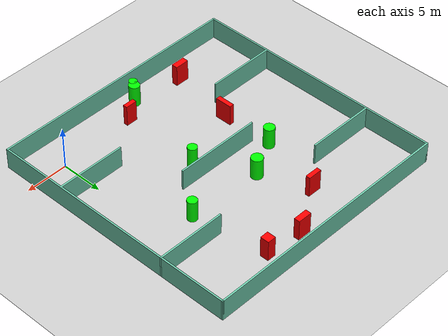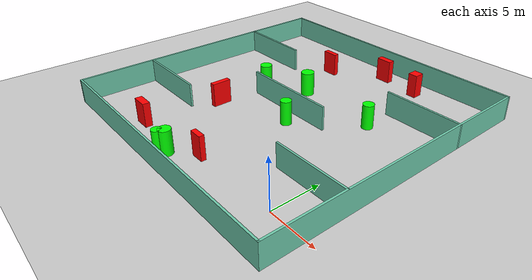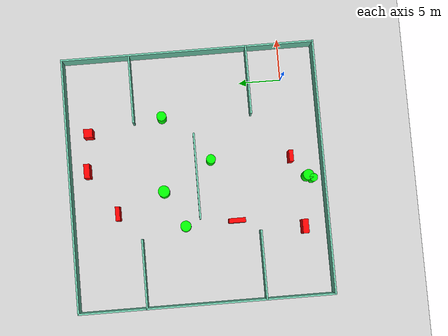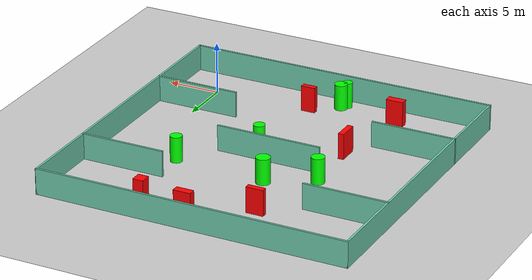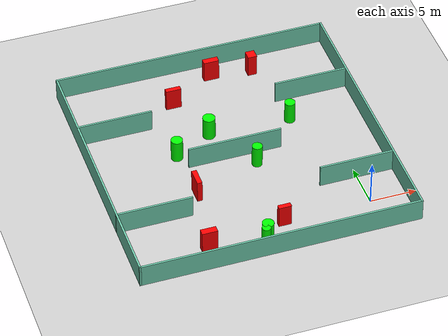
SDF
<sdf version="1.7">
 <world name="default">
  <light name="sun" type="directional">
   <pose>0 0 10 0 -0 0</pose>
   <diffuse>0.8 0.8 0.8 1</diffuse>
   <specular>0.2 0.2 0.2 1</specular>
   <attenuation>
    <range>1000</range>
    <constant>0.9</constant>
    <linear>0.01</linear>
    <quadratic>0.001</quadratic>
   </attenuation>
   <direction>-0.5 0.1 -0.9</direction>
   <spot><inner_angle>0</inner_angle><outer_angle>0</outer_angle><falloff>0</falloff></spot>
  </light>
  <model name="ground_plane">
   <static>1</static>
   <link name="link">
    <collision name="collision">
     <geometry><plane><normal>0 0 1</normal><size>100 100</size></plane></geometry>
     <surface>
      <contact><collide_bitmask>65535</collide_bitmask></contact>
      <friction><ode><mu>100</mu><mu2>50</mu2></ode></friction>
     </surface>
    </collision>
    <visual name="visual">
     <cast_shadows>0</cast_shadows>
     <geometry><plane><normal>0 0 1</normal><size>100 100</size></plane></geometry>
     <material>
      <script><uri>file://media/materials/scripts/gazebo.material</uri><name>Gazebo/Grey</name></script>
     </material>
    </visual>
   </link>
  </model>
  <gravity>0 0 -9.8</gravity>
  <magnetic_field>6e-06 2.3e-05 -4.2e-05</magnetic_field>
  <atmosphere type="adiabatic"/>
  <physics type="ode">
   <max_step_size>0.001</max_step_size>
   <real_time_factor>1</real_time_factor>
   <real_time_update_rate>1000</real_time_update_rate>
  </physics>
  <scene><ambient>0.4 0.4 0.4 1</ambient><background>0.7 0.7 0.7 1</background><shadows>1</shadows></scene>
  <spherical_coordinates>
   <surface_model>EARTH_WGS84</surface_model>
   <latitude_deg>0</latitude_deg>
   <longitude_deg>0</longitude_deg>
   <elevation>0</elevation>
   <heading_deg>0</heading_deg>
  </spherical_coordinates>
  <model name="my_base_walls">
   <link name="Wall_10">
    <collision name="Wall_10_Collision">
     <geometry><box><size>8.2 0.2 2.5</size></box></geometry>
     <pose>0 0 1.25 0 -0 0</pose>
    </collision>
    <visual name="Wall_10_Visual">
     <pose>0 0 1.25 0 -0 0</pose>
     <geometry><box><size>8.2 0.2 2.5</size></box></geometry>
     <material>
      <script><uri>file://media/materials/scripts/gazebo.material</uri><name>Gazebo/Grey</name></script>
      <ambient>0.435294 0.796078 0.67451 1</ambient>
     </material>
     <meta><layer>0</layer></meta>
    </visual>
    <pose>-11 -7 0 0 -0 0</pose>
   </link>
   <link name="Wall_12">
    <collision name="Wall_12_Collision">
     <geometry><box><size>8.2 0.2 2.5</size></box></geometry>
     <pose>0 0 1.25 0 -0 0</pose>
    </collision>
    <visual name="Wall_12_Visual">
     <pose>0 0 1.25 0 -0 0</pose>
     <geometry><box><size>8.2 0.2 2.5</size></box></geometry>
     <material>
      <script><uri>file://media/materials/scripts/gazebo.material</uri><name>Gazebo/Grey</name></script>
      <ambient>0.435294 0.796078 0.67451 1</ambient>
     </material>
     <meta><layer>0</layer></meta>
    </visual>
    <pose>-11 7 0 0 -0 0</pose>
   </link>
   <link name="Wall_14">
    <collision name="Wall_14_Collision">
     <geometry><box><size>8.2 0.2 2.5</size></box></geometry>
     <pose>0 0 1.25 0 -0 0</pose>
    </collision>
    <visual name="Wall_14_Visual">
     <pose>0 0 1.25 0 -0 0</pose>
     <geometry><box><size>8.2 0.2 2.5</size></box></geometry>
     <material>
      <script><uri>file://media/materials/scripts/gazebo.material</uri><name>Gazebo/Grey</name></script>
      <ambient>0.435294 0.796078 0.67451 1</ambient>
     </material>
     <meta><layer>0</layer></meta>
    </visual>
    <pose>11 7 0 0 -0 3.14159</pose>
   </link>
   <link name="Wall_16">
    <collision name="Wall_16_Collision">
     <geometry><box><size>10.2 0.2 2.5</size></box></geometry>
     <pose>0 0 1.25 0 -0 0</pose>
    </collision>
    <visual name="Wall_16_Visual">
     <pose>0 0 1.25 0 -0 0</pose>
     <geometry><box><size>10.2 0.2 2.5</size></box></geometry>
     <material>
      <script><uri>file://media/materials/scripts/gazebo.material</uri><name>Gazebo/Grey</name></script>
      <ambient>0.435294 0.796078 0.67451 1</ambient>
     </material>
     <meta><layer>0</layer></meta>
    </visual>
    <pose>0 0 0 0 -0 3.14159</pose>
   </link>
   <link name="Wall_2">
    <collision name="Wall_2_Collision">
     <geometry><box><size>30.2 0.2 2.5</size></box></geometry>
     <pose>0 0 1.25 0 -0 0</pose>
    </collision>
    <visual name="Wall_2_Visual">
     <pose>0 0 1.25 0 -0 0</pose>
     <geometry><box><size>30.2 0.2 2.5</size></box></geometry>
     <material>
      <script><uri>file://media/materials/scripts/gazebo.material</uri><name>Gazebo/Grey</name></script>
      <ambient>0.435294 0.796078 0.67451 1</ambient>
     </material>
     <meta><layer>0</layer></meta>
    </visual>
    <pose>0 -15 0 0 -0 3.14159</pose>
   </link>
   <link name="Wall_3">
    <collision name="Wall_3_Collision">
     <geometry><box><size>30.2 0.2 2.5</size></box></geometry>
     <pose>0 0 1.25 0 -0 0</pose>
    </collision>
    <visual name="Wall_3_Visual">
     <pose>0 0 1.25 0 -0 0</pose>
     <geometry><box><size>30.2 0.2 2.5</size></box></geometry>
     <material>
      <script><uri>file://media/materials/scripts/gazebo.material</uri><name>Gazebo/Grey</name></script>
      <ambient>0.435294 0.796078 0.67451 1</ambient>
     </material>
     <meta><layer>0</layer></meta>
    </visual>
    <pose>-15 0 0 0 -0 1.5708</pose>
   </link>
   <link name="Wall_4">
    <collision name="Wall_4_Collision">
     <geometry><box><size>30.2 0.2 2.5</size></box></geometry>
     <pose>0 0 1.25 0 -0 0</pose>
    </collision>
    <visual name="Wall_4_Visual">
     <pose>0 0 1.25 0 -0 0</pose>
     <geometry><box><size>30.2 0.2 2.5</size></box></geometry>
     <material>
      <script><uri>file://media/materials/scripts/gazebo.material</uri><name>Gazebo/Grey</name></script>
      <ambient>0.435294 0.796078 0.67451 1</ambient>
     </material>
     <meta><layer>0</layer></meta>
    </visual>
    <pose>0 15 0 0 -0 0</pose>
   </link>
   <link name="Wall_6">
    <collision name="Wall_6_Collision">
     <geometry><box><size>30.2 0.2 2.5</size></box></geometry>
     <pose>0 0 1.25 0 -0 0</pose>
    </collision>
    <visual name="Wall_6_Visual">
     <pose>0 0 1.25 0 -0 0</pose>
     <geometry><box><size>30.2 0.2 2.5</size></box></geometry>
     <material>
      <script><uri>file://media/materials/scripts/gazebo.material</uri><name>Gazebo/Grey</name></script>
      <ambient>0.435294 0.796078 0.67451 1</ambient>
     </material>
     <meta><layer>0</layer></meta>
    </visual>
    <pose>15 0 0 0 -0 1.5708</pose>
   </link>
   <link name="Wall_8">
    <collision name="Wall_8_Collision">
     <geometry><box><size>8.2 0.2 2.5</size></box></geometry>
     <pose>0 0 1.25 0 -0 0</pose>
    </collision>
    <visual name="Wall_8_Visual">
     <pose>0 0 1.25 0 -0 0</pose>
     <geometry><box><size>8.2 0.2 2.5</size></box></geometry>
     <material>
      <script><uri>file://media/materials/scripts/gazebo.material</uri><name>Gazebo/Grey</name></script>
      <ambient>0.435294 0.796078 0.67451 1</ambient>
     </material>
     <meta><layer>0</layer></meta>
    </visual>
    <pose>11 -7 0 0 -0 3.14159</pose>
   </link>
   <static>1</static>
   <pose>-11 11 0 0 -0 0</pose>
  </model>
  <model name="cylinder1">
   <static>1</static>
   <link name="link">
    <inertial>
     <mass>1</mass>
     <inertia><ixx>0.5</ixx><ixy>0</ixy><ixz>0</ixz><iyy>0.5</iyy><iyz>0</iyz><izz>1</izz></inertia>
    </inertial>
    <collision name="collision">
     <geometry><cylinder><radius>0.4784995065114313</radius><length>2.5</length></cylinder></geometry>
    </collision>
    <visual name="visual">
     <geometry><cylinder><radius>0.4784995065114313</radius><length>2.5</length></cylinder></geometry>
     <material>
      <ambient>0 1 0 1</ambient>
      <diffuse>0 1 0 1</diffuse>
      <specular>0.1 0.1 0.1 1</specular>
      <emissive>0 0 0 0</emissive>
     </material>
    </visual>
   </link>
   <pose>-12.279406959365614 -2.667921834288729 1.25 0 0 0</pose>
  </model>
  <model name="cylinder2">
   <static>1</static>
   <link name="link">
    <inertial>
     <mass>1</mass>
     <inertia><ixx>0.5</ixx><ixy>0</ixy><ixz>0</ixz><iyy>0.5</iyy><iyz>0</iyz><izz>1</izz></inertia>
    </inertial>
    <collision name="collision">
     <geometry><cylinder><radius>0.5521379280526254</radius><length>2.5</length></cylinder></geometry>
    </collision>
    <visual name="visual">
     <geometry><cylinder><radius>0.5521379280526254</radius><length>2.5</length></cylinder></geometry>
     <material>
      <ambient>0 1 0 1</ambient>
      <diffuse>0 1 0 1</diffuse>
      <specular>0.1 0.1 0.1 1</specular>
      <emissive>0 0 0 0</emissive>
     </material>
    </visual>
   </link>
   <pose>-9.157989900344518 9.202510329712542 1.25 0 0 0</pose>
  </model>
  <model name="cylinder3">
   <static>1</static>
   <link name="link">
    <inertial>
     <mass>1</mass>
     <inertia><ixx>0.5</ixx><ixy>0</ixy><ixz>0</ixz><iyy>0.5</iyy><iyz>0</iyz><izz>1</izz></inertia>
    </inertial>
    <collision name="collision">
     <geometry><cylinder><radius>0.6267847920685765</radius><length>2.5</length></cylinder></geometry>
    </collision>
    <visual name="visual">
     <geometry><cylinder><radius>0.6267847920685765</radius><length>2.5</length></cylinder></geometry>
     <material>
      <ambient>0 1 0 1</ambient>
      <diffuse>0 1 0 1</diffuse>
      <specular>0.1 0.1 0.1 1</specular>
      <emissive>0 0 0 0</emissive>
     </material>
    </visual>
   </link>
   <pose>-11.906629577368877 -2.0940615643085163 1.25 0 0 0</pose>
  </model>
  <model name="cylinder4">
   <static>1</static>
   <link name="link">
    <inertial>
     <mass>1</mass>
     <inertia><ixx>0.5</ixx><ixy>0</ixy><ixz>0</ixz><iyy>0.5</iyy><iyz>0</iyz><izz>1</izz></inertia>
    </inertial>
    <collision name="collision">
     <geometry><cylinder><radius>0.5727150465248563</radius><length>2.5</length></cylinder></geometry>
    </collision>
    <visual name="visual">
     <geometry><cylinder><radius>0.5727150465248563</radius><length>2.5</length></cylinder></geometry>
     <material>
      <ambient>0 1 0 1</ambient>
      <diffuse>0 1 0 1</diffuse>
      <specular>0.1 0.1 0.1 1</specular>
      <emissive>0 0 0 0</emissive>
     </material>
    </visual>
   </link>
   <pose>-3.610750294684717 14.630240617633138 1.25 0 0 0</pose>
  </model>
  <model name="cylinder5">
   <static>1</static>
   <link name="link">
    <inertial>
     <mass>1</mass>
     <inertia><ixx>0.5</ixx><ixy>0</ixy><ixz>0</ixz><iyy>0.5</iyy><iyz>0</iyz><izz>1</izz></inertia>
    </inertial>
    <collision name="collision">
     <geometry><cylinder><radius>0.6828474161508278</radius><length>2.5</length></cylinder></geometry>
    </collision>
    <visual name="visual">
     <geometry><cylinder><radius>0.6828474161508278</radius><length>2.5</length></cylinder></geometry>
     <material>
      <ambient>0 1 0 1</ambient>
      <diffuse>0 1 0 1</diffuse>
      <specular>0.1 0.1 0.1 1</specular>
      <emissive>0 0 0 0</emissive>
     </material>
    </visual>
   </link>
   <pose>-12.523729183797172 15.015857510083226 1.25 0 0 0</pose>
  </model>
  <model name="cylinder6">
   <static>1</static>
   <link name="link">
    <inertial>
     <mass>1</mass>
     <inertia><ixx>0.5</ixx><ixy>0</ixy><ixz>0</ixz><iyy>0.5</iyy><iyz>0</iyz><izz>1</izz></inertia>
    </inertial>
    <collision name="collision">
     <geometry><cylinder><radius>0.6349554495956073</radius><length>2.5</length></cylinder></geometry>
    </collision>
    <visual name="visual">
     <geometry><cylinder><radius>0.6349554495956073</radius><length>2.5</length></cylinder></geometry>
     <material>
      <ambient>0 1 0 1</ambient>
      <diffuse>0 1 0 1</diffuse>
      <specular>0.1 0.1 0.1 1</specular>
      <emissive>0 0 0 0</emissive>
     </material>
    </visual>
   </link>
   <pose>-16.794968021768717 12.768539433235281 1.25 0 0 0</pose>
  </model>
  <model name="box1">
   <static>1</static>
   <link name="link">
    <inertial>
     <mass>1</mass>
     <inertia><ixx>0.083</ixx><ixy>0</ixy><ixz>0</ixz><iyy>0.083</iyy><iyz>0</iyz><izz>0.083</izz></inertia>
    </inertial>
    <collision name="collision">
     <geometry><box><size>1.3730427825437073 0.511569739216472 2.5</size></box></geometry>
    </collision>
    <visual name="visual">
     <geometry><box><size>1.3730427825437073 0.511569739216472 2.5</size></box></geometry>
     <material>
      <ambient>1 0 0 1</ambient>
      <diffuse>1 0 0 1</diffuse>
      <specular>0.1 0.1 0.1 1</specular>
      <emissive>0 0 0 0</emissive>
     </material>
    </visual>
    <sensor name="my_contact" type="contact">
     <contact><collision>box_collision</collision><topic>__default_topic__</topic></contact>
    </sensor>
   </link>
   <pose>-9.495964459609043 -0.2603889353327231 1.25 0 0 0</pose>
  </model>
  <model name="box2">
   <static>1</static>
   <link name="link">
    <inertial>
     <mass>1</mass>
     <inertia><ixx>0.083</ixx><ixy>0</ixy><ixz>0</ixz><iyy>0.083</iyy><iyz>0</iyz><izz>0.083</izz></inertia>
    </inertial>
    <collision name="collision">
     <geometry><box><size>1.004180470308408 1.0420964495203346 2.5</size></box></geometry>
    </collision>
    <visual name="visual">
     <geometry><box><size>1.004180470308408 1.0420964495203346 2.5</size></box></geometry>
     <material>
      <ambient>1 0 0 1</ambient>
      <diffuse>1 0 0 1</diffuse>
      <specular>0.1 0.1 0.1 1</specular>
      <emissive>0 0 0 0</emissive>
     </material>
    </visual>
    <sensor name="my_contact" type="contact">
     <contact><collision>box_collision</collision><topic>__default_topic__</topic></contact>
    </sensor>
   </link>
   <pose>-4.940248330957765 23.43416966082028 1.25 0 0 0</pose>
  </model>
  <model name="box3">
   <static>1</static>
   <link name="link">
    <inertial>
     <mass>1</mass>
     <inertia><ixx>0.083</ixx><ixy>0</ixy><ixz>0</ixz><iyy>0.083</iyy><iyz>0</iyz><izz>0.083</izz></inertia>
    </inertial>
    <collision name="collision">
     <geometry><box><size>0.5461759811551963 1.9761763715198868 2.5</size></box></geometry>
    </collision>
    <visual name="visual">
     <geometry><box><size>0.5461759811551963 1.9761763715198868 2.5</size></box></geometry>
     <material>
      <ambient>1 0 0 1</ambient>
      <diffuse>1 0 0 1</diffuse>
      <specular>0.1 0.1 0.1 1</specular>
      <emissive>0 0 0 0</emissive>
     </material>
    </visual>
    <sensor name="my_contact" type="contact">
     <contact><collision>box_collision</collision><topic>__default_topic__</topic></contact>
    </sensor>
   </link>
   <pose>-16.58165288522258 6.703568372592439 1.25 0 0 0</pose>
  </model>
  <model name="box4">
   <static>1</static>
   <link name="link">
    <inertial>
     <mass>1</mass>
     <inertia><ixx>0.083</ixx><ixy>0</ixy><ixz>0</ixz><iyy>0.083</iyy><iyz>0</iyz><izz>0.083</izz></inertia>
    </inertial>
    <collision name="collision">
     <geometry><box><size>1.6697752781148467 0.518524844145755 2.5</size></box></geometry>
    </collision>
    <visual name="visual">
     <geometry><box><size>1.6697752781148467 0.518524844145755 2.5</size></box></geometry>
     <material>
      <ambient>1 0 0 1</ambient>
      <diffuse>1 0 0 1</diffuse>
      <specular>0.1 0.1 0.1 1</specular>
      <emissive>0 0 0 0</emissive>
     </material>
    </visual>
    <sensor name="my_contact" type="contact">
     <contact><collision>box_collision</collision><topic>__default_topic__</topic></contact>
    </sensor>
   </link>
   <pose>-14.693043077763633 20.629568776668485 1.25 0 0 0</pose>
  </model>
  <model name="box5">
   <static>1</static>
   <link name="link">
    <inertial>
     <mass>1</mass>
     <inertia><ixx>0.083</ixx><ixy>0</ixy><ixz>0</ixz><iyy>0.083</iyy><iyz>0</iyz><izz>0.083</izz></inertia>
    </inertial>
    <collision name="collision">
     <geometry><box><size>1.667581208162667 0.7158487684391581 2.5</size></box></geometry>
    </collision>
    <visual name="visual">
     <geometry><box><size>1.667581208162667 0.7158487684391581 2.5</size></box></geometry>
     <material>
      <ambient>1 0 0 1</ambient>
      <diffuse>1 0 0 1</diffuse>
      <specular>0.1 0.1 0.1 1</specular>
      <emissive>0 0 0 0</emissive>
     </material>
    </visual>
    <sensor name="my_contact" type="contact">
     <contact><collision>box_collision</collision><topic>__default_topic__</topic></contact>
    </sensor>
   </link>
   <pose>-17.890650201941444 -1.2210109345045868 1.25 0 0 0</pose>
  </model>
  <model name="box6">
   <static>1</static>
   <link name="link">
    <inertial>
     <mass>1</mass>
     <inertia><ixx>0.083</ixx><ixy>0</ixy><ixz>0</ixz><iyy>0.083</iyy><iyz>0</iyz><izz>0.083</izz></inertia>
    </inertial>
    <collision name="collision">
     <geometry><box><size>1.678447362920046 0.6858925328223443 2.5</size></box></geometry>
    </collision>
    <visual name="visual">
     <geometry><box><size>1.678447362920046 0.6858925328223443 2.5</size></box></geometry>
     <material>
      <ambient>1 0 0 1</ambient>
      <diffuse>1 0 0 1</diffuse>
      <specular>0.1 0.1 0.1 1</specular>
      <emissive>0 0 0 0</emissive>
     </material>
    </visual>
    <sensor name="my_contact" type="contact">
     <contact><collision>box_collision</collision><topic>__default_topic__</topic></contact>
    </sensor>
   </link>
   <pose>-9.400903777189273 23.885287260198538 1.25 0 0 0</pose>
  </model>
 </world>
</sdf>
